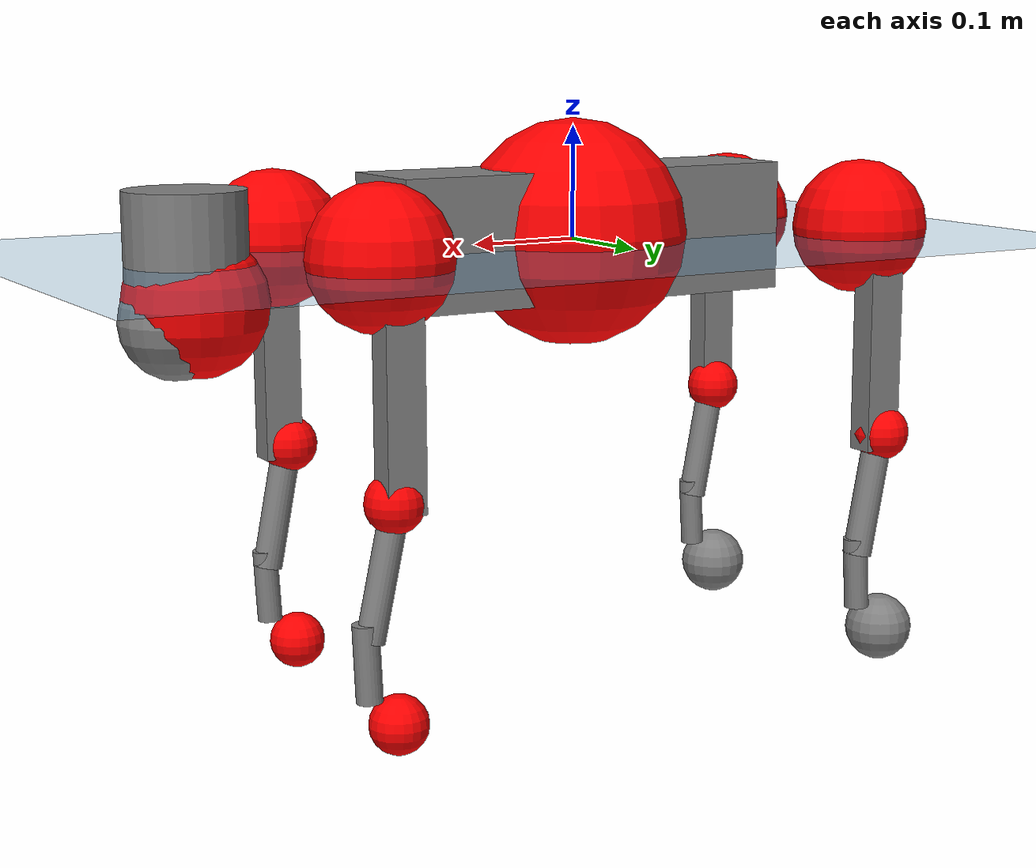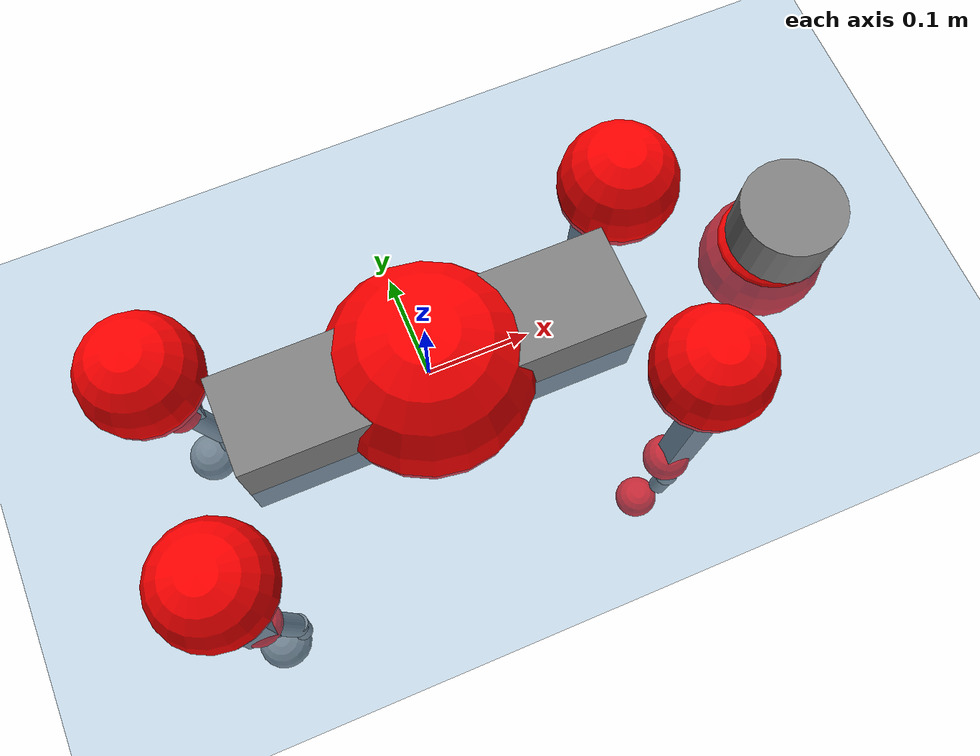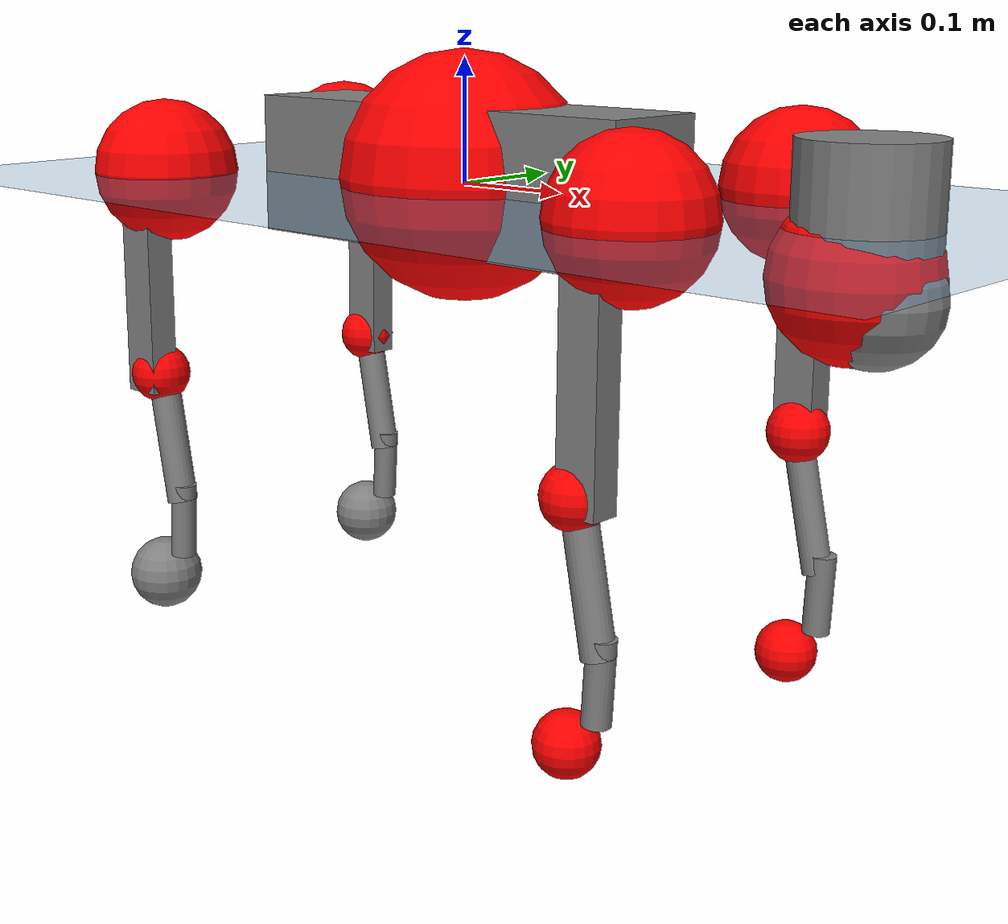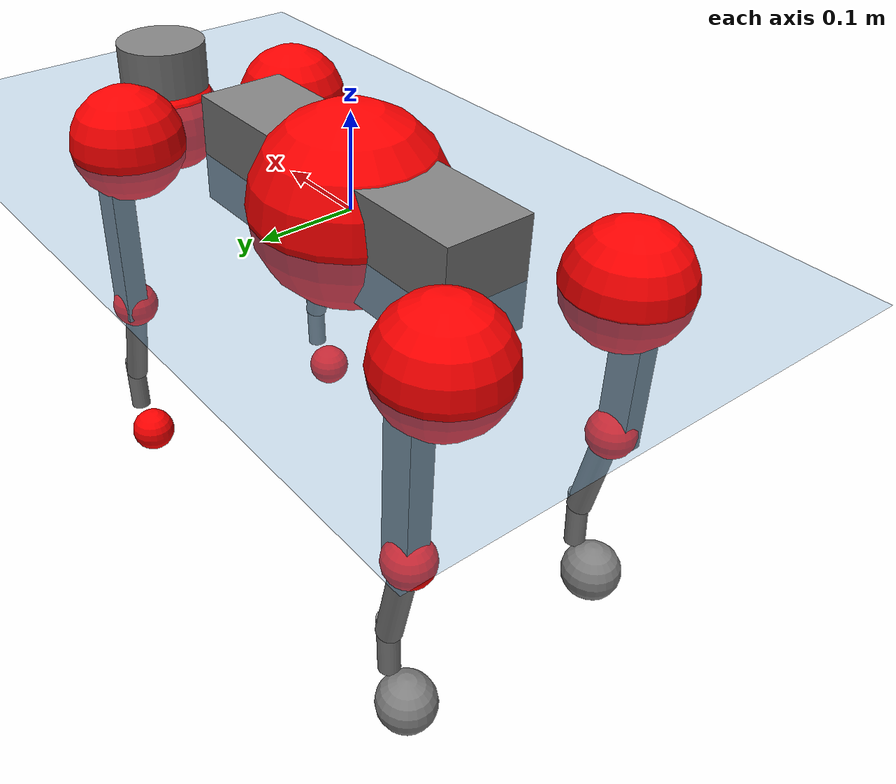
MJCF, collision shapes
<mujoco model="go2">
  <compiler angle="radian" assetdir="assets" balanceinertia="true" inertiafromgeom="false"/>

  <option timestep="0.005" density="1.2" viscosity="2e-05"/>

  <size nkey="1"/>

  <visual>
    <quality shadowsize="8192"/>
    <map shadowclip="0.5"/>
  </visual>

  <default>
    <default class="/">
      <geom contype="0" conaffinity="0" group="1" solref="-1000 -80"/>
      <site size="0.01 0.005 0.005" group="5"/>
      <general forcelimited="true" biastype="affine" gainprm="20" biasprm="0 -20 -0.5"/>
      <default class="go2">
        <joint armature="0.01" damping="0.01" frictionloss="0.2"/>
        <geom condim="1" margin="0.001"/>
        <default class="visual">
          <geom type="mesh" group="2"/>
        </default>
        <default class="collision">
          <geom group="3"/>
          <default class="foot">
            <geom size="0.022 0 0" condim="6" priority="1" friction="0.8 0.02 0.01" solimp="0.015 1 0.022"/>
          </default>
        </default>
        <default class="reward_collision_sphere">
          <geom group="5" rgba="1 0 0 1"/>
        </default>
      </default>
    </default>
  </default>

  <asset>
    <texture type="skybox" colorspace="auto" name="//unnamed_texture_0" builtin="gradient" rgb1="0.95 0.95 0.95" rgb2="0.95 0.95 0.95" width="100" height="600"/>
    <texture type="2d" colorspace="auto" name="texplane" builtin="checker" rgb1="0.345 0.575 0.748" rgb2="0.345 0.575 0.748" markrgb="1 1 1" width="512" height="512"/>
    <material name="MatPlane" class="/" texture="texplane" texuniform="true" texrepeat="2 2" specular="0.9"/>
    <material name="metal" class="/" rgba="0.9 0.95 0.95 1"/>
    <material name="black" class="/" rgba="0 0 0 1"/>
    <material name="white" class="/"/>
    <material name="gray" class="/" rgba="0.671705 0.692426 0.77427 1"/>
    <mesh name="base_0" class="/" file="base_0.obj"/>
    <mesh name="base_1" class="/" file="base_1.obj"/>
    <mesh name="base_2" class="/" file="base_2.obj"/>
    <mesh name="base_3" class="/" file="base_3.obj"/>
    <mesh name="base_4" class="/" file="base_4.obj"/>
    <mesh name="hip_0" class="/" file="hip_0.obj"/>
    <mesh name="hip_1" class="/" file="hip_1.obj"/>
    <mesh name="thigh_0" class="/" file="thigh_0.obj"/>
    <mesh name="thigh_1" class="/" file="thigh_1.obj"/>
    <mesh name="thigh_mirror_0" class="/" file="thigh_mirror_0.obj"/>
    <mesh name="thigh_mirror_1" class="/" file="thigh_mirror_1.obj"/>
    <mesh name="calf_0" class="/" file="calf_0.obj"/>
    <mesh name="calf_1" class="/" file="calf_1.obj"/>
    <mesh name="calf_mirror_0" class="/" file="calf_mirror_0.obj"/>
    <mesh name="calf_mirror_1" class="/" file="calf_mirror_1.obj"/>
    <mesh name="foot" class="/" file="foot.obj"/>
  </asset>

  <worldbody>
    <geom name="floor" class="/" size="100 100 0.125" type="plane" group="0" material="MatPlane"/>
    <light name="toplight_shadow" class="/" pos="0 0 5" dir="0.0990148 0.0990148 -0.990148" type="directional" ambient="0.04 0.04 0.04" diffuse="0.55 0.55 0.55" specular="0.12 0.12 0.12"/>
    <light name="toplight_fill" class="/" pos="0 0 5" dir="0.0990148 0.0990148 -0.990148" type="directional" castshadow="false" ambient="0.04 0.04 0.04" diffuse="0.3 0.3 0.3" specular="0.08 0.08 0.08"/>
    <body name="trunk" childclass="go2" pos="-0.000362227 -8.23635e-05 0.00617239" quat="1 -0.000227416 0.000854364 3.59658e-05">
      <inertial pos="0.0286703 -0.00997687 -0.0118435" quat="-0.000389384 0.713084 -0.000887189 0.701078" mass="7.52042" diaginertia="0.342155 0.0578692 0.0126168"/>
      <joint name="//unnamed_joint_0" type="free" armature="0" damping="0" frictionloss="0"/>
      <geom name="//unnamed_geom_1" class="visual" material="black" mesh="base_0"/>
      <geom name="//unnamed_geom_2" class="visual" material="black" mesh="base_1"/>
      <geom name="//unnamed_geom_3" class="visual" material="black" mesh="base_2"/>
      <geom name="//unnamed_geom_4" class="visual" material="white" mesh="base_3"/>
      <geom name="//unnamed_geom_5" class="visual" material="gray" mesh="base_4"/>
      <geom name="trunk_1" class="collision" size="0.190698 0.0473957 0.0577873" type="box"/>
      <geom name="trunk_2" class="collision" size="0.0506906 0.0456215" pos="0.364733 0 0.00872603" type="cylinder"/>
      <geom name="trunk_3" class="collision" size="0.0476491" pos="0.374971 0 -0.0523562"/>
      <geom name="//unnamed_geom_9" class="reward_collision_sphere" size="0.101381"/>
      <geom name="//unnamed_geom_10" class="reward_collision_sphere" size="0.0608287" pos="0.358334 0 -0.0392671"/>
      <site name="imu" pos="-0.0416937 0.0210193 0.0262174" size="0.0101381"/>
      <camera name="track" pos="0 -1.77813 0" quat="0.707107 0.707107 0 0" mode="trackcom"/>
      <camera name="ego_camera" pos="0.399287 0 0.0392671" quat="-0.5 -0.5 0.5 0.5"/>
      <body name="FL_hip" pos="0.245063 0.0465464 0.00251325" quat="1 -2.92518e-05 2.75249e-06 -0.000370286">
        <inertial pos="0.00145137 -3.39703e-05 0.00378982" quat="0.496511 0.499734 0.508136 0.495521" mass="0.722917" diaginertia="0.00306004 0.000352436 0.000232502"/>
        <joint name="FL_hip_joint" pos="0 0 0" axis="1 0.000428237 0.000506853" range="-0.9904 1.04875" armature="0.00741652" damping="0" frictionloss="0.282456"/>
        <geom name="//unnamed_geom_11" class="visual" material="metal" mesh="hip_0"/>
        <geom name="//unnamed_geom_12" class="visual" material="gray" mesh="hip_1"/>
        <geom name="//unnamed_geom_13" class="collision" size="0.0466353 0.0202762" pos="0 0.0711253 0" quat="0.707107 0.707107 0 0" type="cylinder"/>
        <geom name="//unnamed_geom_14" class="reward_collision_sphere" size="0.0608287" pos="0 0.0622347 0"/>
        <body name="FL_thigh" pos="-0.00339932 0.0851733 -0.00268406" quat="1 6.00333e-05 8.51745e-06 -0.000116092">
          <inertial pos="-0.00653751 -0.0207539 -0.0244521" quat="0.827448 0.0786866 -0.0246661 0.555455" mass="1.32249" diaginertia="0.0199284 0.00328 0.000559042"/>
          <joint name="FL_thigh_joint" pos="0 0 0" axis="-0.00475187 0.999879 -0.0148381" stiffness="0.00795016" range="-1.463 3.4341" armature="0.00948555" damping="0.0197272" frictionloss="0.216149"/>
          <geom name="//unnamed_geom_15" class="visual" material="metal" mesh="thigh_0"/>
          <geom name="//unnamed_geom_16" class="visual" material="gray" mesh="thigh_1"/>
          <geom name="//unnamed_geom_17" class="collision" size="0.107971 0.0124192 0.0172348" pos="0 0 -0.0929322" quat="0.707107 0 0.707107 0" type="box"/>
          <body name="FL_calf" pos="0.00273499 -0.00597006 -0.192661" quat="0.999989 -0.000402466 -0.0044635 0.0014975">
            <inertial pos="0.00646972 -0.000813722 -0.123928" quat="0.710081 0.00228417 -0.00584986 0.704092" mass="0.279153" diaginertia="0.00506176 0.000844273 2.96902e-05"/>
            <joint name="FL_calf_joint" pos="0 0 0" axis="-0.00292477 0.999984 -0.00476541" stiffness="0.00776246" range="-2.70415 -0.844495" armature="0.0118183" damping="0" frictionloss="0.265642"/>
            <geom name="//unnamed_geom_18" class="visual" material="gray" mesh="calf_0"/>
            <geom name="//unnamed_geom_19" class="visual" material="black" mesh="calf_1"/>
            <geom name="FL_calf0" class="collision" size="0.0121657 0.0608287" pos="0.0102381 0 -0.0523562" quat="0.994493 0 -0.104807 0" type="cylinder"/>
            <geom name="//unnamed_geom_21" class="collision" size="0.0111519 0.0329489" pos="0.0255953 0 -0.129145" quat="0.999688 0 0.0249974 0" type="cylinder"/>
            <geom name="//unnamed_geom_22" class="visual" pos="0 0 -0.185864" quat="1 0 0 0" material="black" mesh="foot"/>
            <geom name="FL_foot" class="foot" size="0.0154441" pos="-0.00255953 0 -0.185864"/>
            <geom name="//unnamed_geom_24" class="reward_collision_sphere" size="0.0253453"/>
            <geom name="//unnamed_geom_25" class="reward_collision_sphere" size="0.0253453" pos="-0.00255953 0 -0.185864"/>
            <site name="FL_foot" class="foot" pos="-0.00255953 0 -0.185864" size="0.0101381"/>
          </body>
        </body>
      </body>
      <body name="FR_hip" pos="0.245998 -0.0368887 -0.000952905" quat="0.999993 -0.000759439 0.0011838 -0.00350394">
        <inertial pos="-0.0065077 -0.00107945 -0.000772608" quat="0.494534 0.503322 0.502958 0.499136" mass="0.772564" diaginertia="0.00330471 0.00038431 0.000239415"/>
        <joint name="FR_hip_joint" pos="0 0 0" axis="0.999897 -0.00695776 0.012592" range="-1.18858 1.23427" armature="0.00924117" damping="0.00388791" frictionloss="0.256123"/>
        <geom name="//unnamed_geom_26" class="visual" pos="0 1.43425e-10 6.15179e-09" quat="4.63268e-05 1 0 0" material="metal" mesh="hip_0"/>
        <geom name="//unnamed_geom_27" class="visual" pos="0 2.32509e-10 -1.52157e-08" quat="4.63268e-05 1 0 0" material="gray" mesh="hip_1"/>
        <geom name="//unnamed_geom_28" class="collision" size="0.0466353 0.0202762" pos="0 -0.0711253 0" quat="0.707107 0.707107 0 0" type="cylinder"/>
        <geom name="//unnamed_geom_29" class="reward_collision_sphere" size="0.0608287" pos="0 -0.0622347 0"/>
        <body name="FR_thigh" pos="-0.0107132 -0.0895032 -0.00151771" quat="1 5.29482e-05 0.000440554 0.000367916">
          <inertial pos="-0.00218631 0.0189308 -0.028884" quat="0.554352 -0.0158264 0.0846496 0.827815" mass="1.08082" diaginertia="0.0196665 0.00289527 0.000383837"/>
          <joint name="FR_thigh_joint" pos="0 0 0" axis="-0.0305319 -0.998782 0.0387495" range="-3.71597 1.75861" armature="0.0109839" damping="0.0403238" frictionloss="0.20612"/>
          <geom name="//unnamed_geom_30" class="visual" material="metal" mesh="thigh_mirror_0"/>
          <geom name="//unnamed_geom_31" class="visual" material="gray" mesh="thigh_mirror_1"/>
          <geom name="//unnamed_geom_32" class="collision" size="0.107971 0.0124192 0.0172348" pos="0 0 -0.0929322" quat="0.707107 0 0.707107 0" type="box"/>
          <body name="FR_calf" pos="-0.00966913 -0.000213845 -0.18977" quat="1 -3.45206e-05 4.10925e-05 -8.91e-05">
            <inertial pos="0.0103717 0.00087449 -0.133974" quat="0.701126 -0.00880174 0.000922441 0.712982" mass="0.291568" diaginertia="0.00487455 0.000804799 2.66165e-05"/>
            <joint name="FR_calf_joint" pos="0 0 0" axis="0.0382774 -0.998329 -0.0432925" stiffness="0.0111955" range="0.818165 2.87908" armature="0.0104066" damping="0.0104257" frictionloss="0.317177"/>
            <geom name="//unnamed_geom_33" class="visual" material="gray" mesh="calf_mirror_0"/>
            <geom name="//unnamed_geom_34" class="visual" material="black" mesh="calf_mirror_1"/>
            <geom name="FR_calf0" class="collision" size="0.0131796 0.0608287" pos="0.0127977 0 -0.0523562" quat="0.995004 0 -0.0998334 0" type="cylinder"/>
            <geom name="//unnamed_geom_36" class="collision" size="0.0111519 0.0329489" pos="0.0255953 0 -0.129145" quat="0.999688 0 0.0249974 0" type="cylinder"/>
            <geom name="//unnamed_geom_37" class="visual" pos="0 0 -0.185864" quat="1 0 0 0" material="black" mesh="foot"/>
            <geom name="FR_foot" class="foot" size="0.0220718" pos="-0.00255953 0 -0.185864"/>
            <geom name="//unnamed_geom_39" class="reward_collision_sphere" size="0.0253453"/>
            <geom name="//unnamed_geom_40" class="reward_collision_sphere" size="0.0253453" pos="-0.00255953 0 -0.185864"/>
            <site name="FR_foot" class="foot" pos="-0.00255953 0 -0.185864" size="0.0101381"/>
          </body>
        </body>
      </body>
      <body name="RL_hip" pos="-0.247474 0.0347898 0.000281779" quat="1 -0.000281239 0.000711281 0.000217892">
        <inertial pos="0.0104786 0.00978674 0.000469644" quat="0.456619 0.526356 0.515922 0.498269" mass="0.809319" diaginertia="0.00297186 0.000308735 0.000252065"/>
        <joint name="RL_hip_joint" pos="0 0 0" axis="-0.999532 -0.00390456 -0.0303378" stiffness="0.0346766" range="-1.05345 1.11871" armature="0.0102357" damping="0.0338859" frictionloss="0.164083"/>
        <geom name="//unnamed_geom_41" class="visual" pos="-3.54703e-09 0 -6.953e-07" quat="4.63268e-05 0 1 0" material="metal" mesh="hip_0"/>
        <geom name="//unnamed_geom_42" class="visual" pos="-5.75016e-09 0 -6.16632e-07" quat="4.63268e-05 0 1 0" material="gray" mesh="hip_1"/>
        <geom name="//unnamed_geom_43" class="collision" size="0.0466353 0.0202762" pos="0 0.0711253 0" quat="0.707107 0.707107 0 0" type="cylinder"/>
        <geom name="//unnamed_geom_44" class="reward_collision_sphere" size="0.0608287" pos="0 0.0622347 0"/>
        <body name="RL_thigh" pos="0.000887659 0.0929916 -0.00137995" quat="0.999998 -0.00139389 -4.02947e-05 -0.00142081">
          <inertial pos="-0.00301335 -0.0137791 -0.0285463" quat="0.827777 0.0956762 -0.0234807 0.55234" mass="1.15625" diaginertia="0.0179065 0.00301048 0.000374356"/>
          <joint name="RL_thigh_joint" pos="0 0 0" axis="0.00288022 0.999995 0.00140941" range="-0.51347 4.54597" armature="0.0106923" damping="0.0157038" frictionloss="0.201169"/>
          <geom name="//unnamed_geom_45" class="visual" material="metal" mesh="thigh_0"/>
          <geom name="//unnamed_geom_46" class="visual" material="gray" mesh="thigh_1"/>
          <geom name="//unnamed_geom_47" class="collision" size="0.107971 0.0124192 0.0172348" pos="0 0 -0.0929322" quat="0.707107 0 0.707107 0" type="box"/>
          <body name="RL_calf" pos="-0.00681257 0.00121403 -0.186694" quat="0.999993 0.000198717 0.00350923 0.0015458">
            <inertial pos="0.00102514 0.0011369 -0.117634" quat="0.709969 0.0026028 -0.00494979 0.704211" mass="0.237295" diaginertia="0.0044291 0.000612716 1.95005e-05"/>
            <joint name="RL_calf_joint" pos="0 0 0" axis="0.025573 0.999669 0.00263409" stiffness="0.00846829" range="-2.71964 -0.598791" armature="0.0101197" damping="0" frictionloss="0.167597"/>
            <geom name="//unnamed_geom_48" class="visual" material="gray" mesh="calf_0"/>
            <geom name="//unnamed_geom_49" class="visual" material="black" mesh="calf_1"/>
            <geom name="RL_calf0" class="collision" size="0.0131796 0.0608287" pos="0.0127977 0 -0.0523562" quat="0.995004 0 -0.0998334 0" type="cylinder"/>
            <geom name="//unnamed_geom_51" class="collision" size="0.0111519 0.0329489" pos="0.0255953 0 -0.129145" quat="0.999688 0 0.0249974 0" type="cylinder"/>
            <geom name="//unnamed_geom_52" class="visual" pos="0 0 -0.185864" quat="1 0 0 0" material="black" mesh="foot"/>
            <geom name="RL_foot" class="foot" size="0.0304263" pos="-0.00255953 0 -0.185864"/>
            <geom name="//unnamed_geom_54" class="reward_collision_sphere" size="0.0253453"/>
            <geom name="//unnamed_geom_55" class="reward_collision_sphere" size="0.0253453" pos="-0.00255953 0 -0.185864"/>
            <site name="RL_foot" class="foot" pos="-0.00255953 0 -0.185864" size="0.0101381"/>
          </body>
        </body>
      </body>
      <body name="RR_hip" pos="-0.248309 -0.0483052 -0.0060744" quat="0.999991 -0.000888097 0.000262181 0.00409071">
        <inertial pos="0.00676554 -0.00522062 0.00288155" quat="0.485801 0.466786 0.493098 0.550421" mass="0.762515" diaginertia="0.00303647 0.000369443 0.000259922"/>
        <joint name="RR_hip_joint" pos="0 0 0" axis="-0.999966 -0.000652459 -0.00820215" stiffness="0.00749799" range="-0.883989 1.04" armature="0.0148805" damping="0.0269422" frictionloss="0.151097"/>
        <geom name="//unnamed_geom_56" class="visual" pos="3.5335e-09 1.43425e-10 -7.01451e-07" quat="2.14617e-09 4.63268e-05 4.63268e-05 -1" material="metal" mesh="hip_0"/>
        <geom name="//unnamed_geom_57" class="visual" pos="5.78362e-09 2.32509e-10 -6.01416e-07" quat="2.14617e-09 4.63268e-05 4.63268e-05 -1" material="gray" mesh="hip_1"/>
        <geom name="//unnamed_geom_58" class="collision" size="0.0466353 0.0202762" pos="0 -0.0711253 0" quat="0.707107 0.707107 0 0" type="cylinder"/>
        <geom name="//unnamed_geom_59" class="reward_collision_sphere" size="0.0608287" pos="0 -0.0622347 0"/>
        <body name="RR_thigh" pos="-0.000590672 -0.0855576 0.00998175" quat="1 -0.000198718 0.000109151 0.000139543">
          <inertial pos="-0.00445149 0.00831386 -0.0329675" quat="0.555893 -0.0296731 0.0504255 0.829192" mass="1.36222" diaginertia="0.0228586 0.00362957 0.000499638"/>
          <joint name="RR_thigh_joint" pos="0 0 0" axis="0.0056422 -0.999671 -0.0250396" range="-4.59066 0.713669" armature="0.00386434" damping="0" frictionloss="0.1889"/>
          <geom name="//unnamed_geom_60" class="visual" material="metal" mesh="thigh_mirror_0"/>
          <geom name="//unnamed_geom_61" class="visual" material="gray" mesh="thigh_mirror_1"/>
          <geom name="//unnamed_geom_62" class="collision" size="0.107971 0.0124192 0.0172348" pos="0 0 -0.0929322" quat="0.707107 0 0.707107 0" type="box"/>
          <body name="RR_calf" pos="0.00219667 0.00722438 -0.186284" quat="0.999995 -0.00131472 0.00289582 0.00064006">
            <inertial pos="0.00445125 -0.00133126 -0.125363" quat="0.730663 0.0174205 0.0257748 0.682029" mass="0.292918" diaginertia="0.00536497 0.000863922 2.40625e-05"/>
            <joint name="RR_calf_joint" pos="0 0 0" axis="0.0111647 -0.998981 -0.0437263" range="0.691262 2.54759" armature="0.00934122" damping="0" frictionloss="0.210182"/>
            <geom name="//unnamed_geom_63" class="visual" material="gray" mesh="calf_mirror_0"/>
            <geom name="//unnamed_geom_64" class="visual" material="black" mesh="calf_mirror_1"/>
            <geom name="RR_calf0" class="collision" size="0.0131796 0.0608287" pos="0.0127977 0 -0.0523562" quat="0.995004 0 -0.0998334 0" type="cylinder"/>
            <geom name="//unnamed_geom_66" class="collision" size="0.0111519 0.0329489" pos="0.0255953 0 -0.129145" quat="0.999688 0 0.0249974 0" type="cylinder"/>
            <geom name="//unnamed_geom_67" class="visual" pos="0 0 -0.185864" quat="1 0 0 0" material="black" mesh="foot"/>
            <geom name="RR_foot" class="foot" size="0.031705" pos="-0.00255953 0 -0.185864"/>
            <geom name="//unnamed_geom_69" class="reward_collision_sphere" size="0.0253453"/>
            <geom name="//unnamed_geom_70" class="reward_collision_sphere" size="0.0253453" pos="-0.00255953 0 -0.185864"/>
            <site name="RR_foot" class="foot" pos="-0.00255953 0 -0.185864" size="0.0101381"/>
          </body>
        </body>
      </body>
    </body>
  </worldbody>

  <contact>
    <pair class="/" geom1="floor" geom2="FL_foot" name="//unnamed_contact_0"/>
    <pair class="/" geom1="floor" geom2="FR_foot" name="//unnamed_contact_1"/>
    <pair class="/" geom1="floor" geom2="RL_foot" name="//unnamed_contact_2"/>
    <pair class="/" geom1="floor" geom2="RR_foot" name="//unnamed_contact_3"/>
  </contact>

  <actuator>
    <general name="FL_hip" class="/" joint="FL_hip_joint" forcerange="-27.943 27.943" gainprm="15.3876" biasprm="0 -15.3876 -0.472244"/>
    <general name="FL_thigh" class="/" joint="FL_thigh_joint" forcerange="-34.0989 34.0989" gainprm="15.3876" biasprm="0 -15.3876 -0.472244"/>
    <general name="FL_calf" class="/" joint="FL_calf_joint" forcerange="-44.8491 44.8491" gainprm="15.3876" biasprm="0 -15.3876 -0.472244"/>
    <general name="FR_hip" class="/" joint="FR_hip_joint" forcerange="-25.1541 25.1541" gainprm="15.3876" biasprm="0 -15.3876 -0.472244"/>
    <general name="FR_thigh" class="/" joint="FR_thigh_joint" forcerange="-22.3271 22.3271" gainprm="15.3876" biasprm="0 -15.3876 -0.472244"/>
    <general name="FR_calf" class="/" joint="FR_calf_joint" forcerange="-51.486 51.486" gainprm="15.3876" biasprm="0 -15.3876 -0.472244"/>
    <general name="RL_hip" class="/" joint="RL_hip_joint" forcerange="-19.0301 19.0301" gainprm="15.3876" biasprm="0 -15.3876 -0.472244"/>
    <general name="RL_thigh" class="/" joint="RL_thigh_joint" forcerange="-23.9576 23.9576" gainprm="15.3876" biasprm="0 -15.3876 -0.472244"/>
    <general name="RL_calf" class="/" joint="RL_calf_joint" forcerange="-52.819 52.819" gainprm="15.3876" biasprm="0 -15.3876 -0.472244"/>
    <general name="RR_hip" class="/" joint="RR_hip_joint" forcerange="-33.8775 33.8775" gainprm="15.3876" biasprm="0 -15.3876 -0.472244"/>
    <general name="RR_thigh" class="/" joint="RR_thigh_joint" forcerange="-23.7497 23.7497" gainprm="15.3876" biasprm="0 -15.3876 -0.472244"/>
    <general name="RR_calf" class="/" joint="RR_calf_joint" forcerange="-46.4315 46.4315" gainprm="15.3876" biasprm="0 -15.3876 -0.472244"/>
  </actuator>

  <sensor>
    <gyro site="imu" name="imu_angular_velocity"/>
    <velocimeter site="imu" name="imu_linear_velocity"/>
    <framelinvel objtype="site" objname="FL_foot" name="FL_foot_global_linear_velocity"/>
    <framelinvel objtype="site" objname="FR_foot" name="FR_foot_global_linear_velocity"/>
    <framelinvel objtype="site" objname="RL_foot" name="RL_foot_global_linear_velocity"/>
    <framelinvel objtype="site" objname="RR_foot" name="RR_foot_global_linear_velocity"/>
  </sensor>

  <keyframe>
    <key name="home" qpos="0 0 0.325 1 0 0 0 0.1 0.8 -1.5 -0.1 -0.8 1.5 -0.1 0.8 -1.5 0.1 -0.8 1.5"/>
  </keyframe>
</mujoco>
